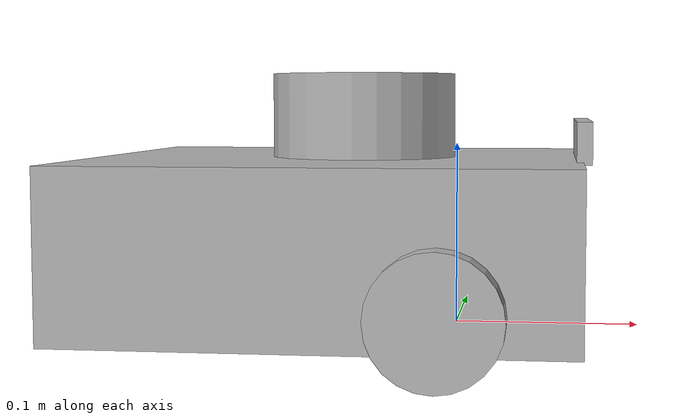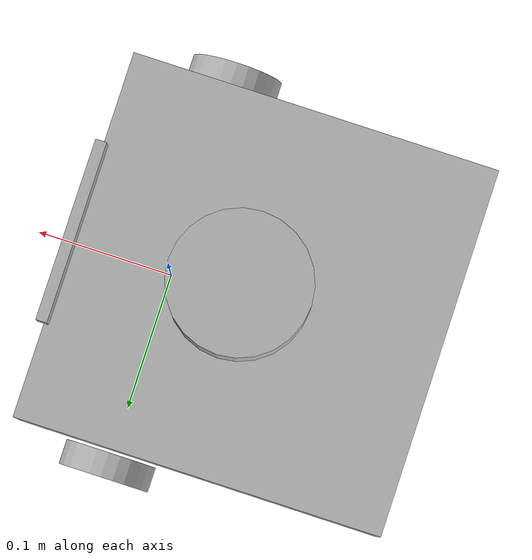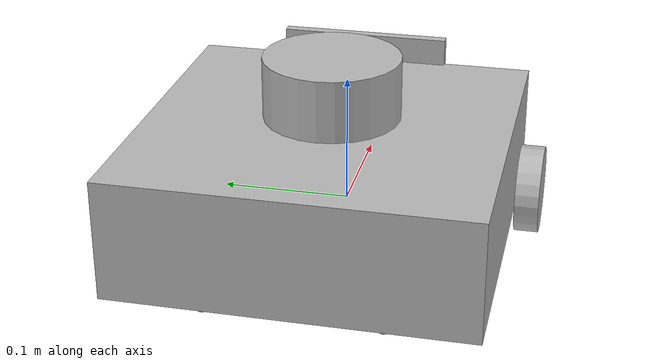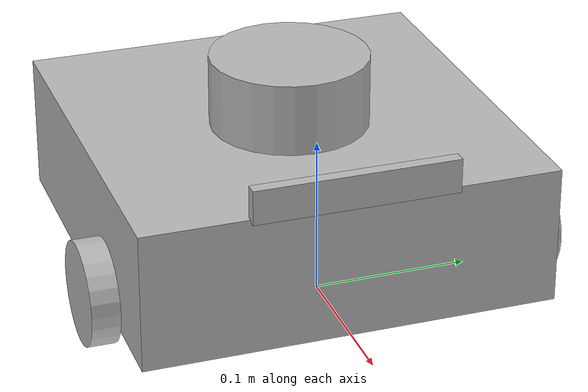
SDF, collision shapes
<?xml version="1.0"?>
<sdf version="1.6">
    <model name="turtlebot3_waffle">
        <pose>0.0 0.0 0.0 0.0 0.0 0.0</pose>

        <link name="base_footprint" />

        <link name="base_link">

            <inertial>
                <pose>-0.064 0 0.048 0 0 0</pose>
                <inertia>
                    <ixx>0.001</ixx>
                    <ixy>0.000</ixy>
                    <ixz>0.000</ixz>
                    <iyy>0.001</iyy>
                    <iyz>0.000</iyz>
                    <izz>0.001</izz>
                </inertia>
                <mass>1.0</mass>
            </inertial>

            <collision name="base_collision">
                <pose>-0.064 0 0.048 0 0 0</pose>
                <geometry>
                    <box>
                        <size>0.265 0.265 0.089</size>
                    </box>
                </geometry>
            </collision>

            <visual name="base_visual">
                <pose>-0.064 0 0 0 0 0</pose>
                <geometry>
                    <mesh>
                        <uri>model://turtlebot3_common/meshes/waffle_base.dae</uri>
                        <scale>0.001 0.001 0.001</scale>
                    </mesh>
                </geometry>
            </visual>
        </link>

        <link name="imu_link">
            <sensor name="tb3_imu" type="imu">
                <always_on>true</always_on>
                <update_rate>200</update_rate>
                <topic>imu</topic>
                <imu>
                    <angular_velocity>
                        <x>
                            <noise type="gaussian">
                                <mean>0.0</mean>
                                <stddev>2e-4</stddev>
                            </noise>
                        </x>
                        <y>
                            <noise type="gaussian">
                                <mean>0.0</mean>
                                <stddev>2e-4</stddev>
                            </noise>
                        </y>
                        <z>
                            <noise type="gaussian">
                                <mean>0.0</mean>
                                <stddev>2e-4</stddev>
                            </noise>
                        </z>
                    </angular_velocity>
                    <linear_acceleration>
                        <x>
                            <noise type="gaussian">
                                <mean>0.0</mean>
                                <stddev>1.7e-2</stddev>
                            </noise>
                        </x>
                        <y>
                            <noise type="gaussian">
                                <mean>0.0</mean>
                                <stddev>1.7e-2</stddev>
                            </noise>
                        </y>
                        <z>
                            <noise type="gaussian">
                                <mean>0.0</mean>
                                <stddev>1.7e-2</stddev>
                            </noise>
                        </z>
                    </linear_acceleration>
                </imu>
            </sensor>
        </link>

        <link name="base_scan">
            <inertial>
                <pose>-0.064 0 0.121 0 0 0</pose>
                <inertia>
                    <ixx>0.001</ixx>
                    <ixy>0.000</ixy>
                    <ixz>0.000</ixz>
                    <iyy>0.001</iyy>
                    <iyz>0.000</iyz>
                    <izz>0.001</izz>
                </inertia>
                <mass>0.125</mass>
            </inertial>

            <collision name="lidar_sensor_collision">
                <pose>-0.052 0 0.111 0 0 0</pose>
                <geometry>
                    <cylinder>
                        <radius>0.0508</radius>
                        <length>0.055</length>
                    </cylinder>
                </geometry>
            </collision>

            <visual name="lidar_sensor_visual">
                <pose>-0.064 0 0.121 0 0 0</pose>
                <geometry>
                    <cylinder>
                        <radius>0.0508</radius>
                        <length>0.055</length>
                    </cylinder>
                </geometry>
            </visual>
            <sensor name='gpu_lidar' type='gpu_lidar'>
                <pose relative_to='lidar_frame'>0 0 0.2 0 0 0</pose>
                <topic>
                    lidar</topic>
                <update_rate>10</update_rate>
                <ray>
                    <scan>
                        <horizontal>
                            <samples>640</samples>
                            <resolution>1</resolution>
                            <min_angle>-3.141592654</min_angle>
                            <max_angle>3.141592654</max_angle>
                        </horizontal>
                        <vertical>
                            <samples>1</samples>
                            <resolution>0.01</resolution>
                            <min_angle>0</min_angle>
                            <max_angle>0</max_angle>
                        </vertical>
                    </scan>
                    <range>
                        <min>0.08</min>
                        <max>10.0</max>
                        <resolution>0.01</resolution>
                    </range>
                </ray>
                <always_on>
                    1</always_on>
                <visualize>true</visualize>
            </sensor>
        </link>

        <frame name="lidar_frame" attached_to='base_footprint'>
            <pose>0. 0 0. 0 0 0</pose>
        </frame>

        <link name="wheel_left_link">
            <inertial>
                <pose>0.0 0.144 0.023 -1.57 0 0</pose>
                <inertia>
                    <ixx>0.001</ixx>
                    <ixy>0.000</ixy>
                    <ixz>0.000</ixz>
                    <iyy>0.001</iyy>
                    <iyz>0.000</iyz>
                    <izz>0.001</izz>
                </inertia>
                <mass>0.1</mass>
            </inertial>

            <collision name="wheel_left_collision">
                <pose>0.0 0.144 0.023 -1.57 0 0</pose>
                <geometry>
                    <cylinder>
                        <radius>0.033</radius>
                        <length>0.018</length>
                    </cylinder>
                </geometry>
                <surface>
                    <!-- This friction pamareter don't contain reliable data!! -->
                    <friction>
                        <ode>
                            <mu>100000.0</mu>
                            <mu2>100000.0</mu2>
                            <fdir1>0 0 0</fdir1>
                            <slip1>0.0</slip1>
                            <slip2>0.0</slip2>
                        </ode>
                    </friction>
                    <contact>
                        <ode>
                            <soft_cfm>0</soft_cfm>
                            <soft_erp>0.2</soft_erp>
                            <kp>1e+5</kp>
                            <kd>1</kd>
                            <max_vel>0.01</max_vel>
                            <min_depth>0.001</min_depth>
                        </ode>
                    </contact>
                </surface>
            </collision>

            <visual name="wheel_left_visual">
                <pose>0.0 0.144 0.023 0 0 0</pose>
                <geometry>
                    <mesh>
                        <uri>model://turtlebot3_common/meshes/tire.dae</uri>
                        <scale>0.001 0.001 0.001</scale>
                    </mesh>
                </geometry>
            </visual>
        </link>

        <link name="wheel_right_link">

            <inertial>
                <pose>0.0 -0.144 0.023 -1.57 0 0</pose>
                <inertia>
                    <ixx>0.001</ixx>
                    <ixy>0.000</ixy>
                    <ixz>0.000</ixz>
                    <iyy>0.001</iyy>
                    <iyz>0.000</iyz>
                    <izz>0.001</izz>
                </inertia>
                <mass>0.1</mass>
            </inertial>

            <collision name="wheel_right_collision">
                <pose>0.0 -0.144 0.023 -1.57 0 0</pose>
                <geometry>
                    <cylinder>
                        <radius>0.033</radius>
                        <length>0.018</length>
                    </cylinder>
                </geometry>
                <surface>
                    <!-- This friction pamareter don't contain reliable data!! -->
                    <friction>
                        <ode>
                            <mu>100000.0</mu>
                            <mu2>100000.0</mu2>
                            <fdir1>0 0 0</fdir1>
                            <slip1>0.0</slip1>
                            <slip2>0.0</slip2>
                        </ode>
                    </friction>
                    <contact>
                        <ode>
                            <soft_cfm>0</soft_cfm>
                            <soft_erp>0.2</soft_erp>
                            <kp>1e+5</kp>
                            <kd>1</kd>
                            <max_vel>0.01</max_vel>
                            <min_depth>0.001</min_depth>
                        </ode>
                    </contact>
                </surface>
            </collision>

            <visual name="wheel_right_visual">
                <pose>0.0 -0.144 0.023 0 0 0</pose>
                <geometry>
                    <mesh>
                        <uri>model://turtlebot3_common/meshes/tire.dae</uri>
                        <scale>0.001 0.001 0.001</scale>
                    </mesh>
                </geometry>
            </visual>
        </link>

        <link name='caster_back_right_link'>
            <pose>-0.177 -0.064 -0.004 0 0 0</pose>
            <inertial>
                <mass>0.001</mass>
                <inertia>
                    <ixx>0.00001</ixx>
                    <ixy>0.000</ixy>
                    <ixz>0.000</ixz>
                    <iyy>0.00001</iyy>
                    <iyz>0.000</iyz>
                    <izz>0.00001</izz>
                </inertia>
            </inertial>
            <collision name='collision'>
                <geometry>
                    <sphere>
                        <radius>0.005000</radius>
                    </sphere>
                </geometry>
                <surface>
                    <contact>
                        <ode>
                            <soft_cfm>0</soft_cfm>
                            <soft_erp>0.2</soft_erp>
                            <kp>1e+5</kp>
                            <kd>1</kd>
                            <max_vel>0.01</max_vel>
                            <min_depth>0.001</min_depth>
                        </ode>
                    </contact>
                </surface>
            </collision>
        </link>

        <link name='caster_back_left_link'>
            <pose>-0.177 0.064 -0.004 0 0 0</pose>
            <inertial>
                <mass>0.001</mass>
                <inertia>
                    <ixx>0.00001</ixx>
                    <ixy>0.000</ixy>
                    <ixz>0.000</ixz>
                    <iyy>0.00001</iyy>
                    <iyz>0.000</iyz>
                    <izz>0.00001</izz>
                </inertia>
            </inertial>
            <collision name='collision'>
                <geometry>
                    <sphere>
                        <radius>0.005000</radius>
                    </sphere>
                </geometry>
                <surface>
                    <contact>
                        <ode>
                            <soft_cfm>0</soft_cfm>
                            <soft_erp>0.2</soft_erp>
                            <kp>1e+5</kp>
                            <kd>1</kd>
                            <max_vel>0.01</max_vel>
                            <min_depth>0.001</min_depth>
                        </ode>
                    </contact>
                </surface>
            </collision>
        </link>

        <link name="camera_link">
            <inertial>
                <pose>0.069 -0.047 0.107 0 0 0</pose>
                <inertia>
                    <ixx>0.001</ixx>
                    <ixy>0.000</ixy>
                    <ixz>0.000</ixz>
                    <iyy>0.001</iyy>
                    <iyz>0.000</iyz>
                    <izz>0.001</izz>
                </inertia>
                <mass>0.035</mass>
            </inertial>
            <collision name="collision_x">
                <pose>0 0.047 -0.005 0 0 0</pose>
                <geometry>
                    <box>
                        <size>0.008 0.130 0.022</size>
                    </box>
                </geometry>
            </collision>

            <pose>0.069 -0.047 0.107 0 0 0</pose>

            <sensor name="intel_realsense_r200_depth" type="depth">
                <always_on>1</always_on>
                <update_rate>5</update_rate>
                <pose>0.064 -0.047 0.107 0 0 0</pose>
                <visualize>true</visualize>
                <topic>camera</topic>
                <camera name="realsense_depth_camera">
                </camera>
            </sensor>

            <collision name="collision_y">
                <pose>0 0.047 -0.005 0 0 0</pose>
                <geometry>
                    <box>
                        <size>0.008 0.130 0.022</size>
                    </box>
                </geometry>
            </collision>
            <pose>0.069 -0.047 0.107 0 0 0</pose>
        </link>

        <joint name="base_joint" type="fixed">
            <parent>base_footprint</parent>
            <child>base_link</child>
            <pose>0.0 0.0 0.010 0 0 0</pose>
        </joint>

        <joint name="wheel_left_joint" type="revolute">
            <parent>base_link</parent>
            <child>wheel_left_link</child>
            <pose>0.0 0.144 0.023 -1.57 0 0</pose>
            <axis>
                <xyz>0 0 1</xyz>
            </axis>
        </joint>

        <joint name="wheel_right_joint" type="revolute">
            <parent>base_link</parent>
            <child>wheel_right_link</child>
            <pose>0.0 -0.144 0.023 -1.57 0 0</pose>
            <axis>
                <xyz>0 0 1</xyz>
            </axis>
        </joint>

        <joint name='caster_back_right_joint' type='ball'>
            <parent>base_link</parent>
            <child>caster_back_right_link</child>
        </joint>

        <joint name='caster_back_left_joint' type='ball'>
            <parent>base_link</parent>
            <child>caster_back_left_link</child>
        </joint>

        <joint name="lidar_joint" type="fixed">
            <parent>base_link</parent>
            <child>base_scan</child>
            <pose>-0.064 0 0.121 0 0 0</pose>
            <axis>
                <xyz>0 0 1</xyz>
            </axis>
        </joint>

        <joint name="camera_joint" type="fixed">
            <parent>base_link</parent>
            <child>camera_link</child>
            <pose>0.064 -0.065 0.094 0 0 0</pose>
            <axis>
                <xyz>0 0 1</xyz>
            </axis>
        </joint>
        <plugin
            filename="libignition-gazebo-diff-drive-system.so"
            name="ignition::gazebo::systems::DiffDrive">
            <left_joint>wheel_left_joint</left_joint>
            <right_joint>wheel_right_joint</right_joint>
            <wheel_separation>0.287</wheel_separation>
            <wheel_radius>0.033</wheel_radius>
            <odom_publish_frequency>1</odom_publish_frequency>
            <topic>cmd_vel</topic>
            <update_rate>30</update_rate>
            <publish_odom>true</publish_odom>
            <publish_tf>true</publish_tf>
        </plugin>

    </model>
</sdf>
